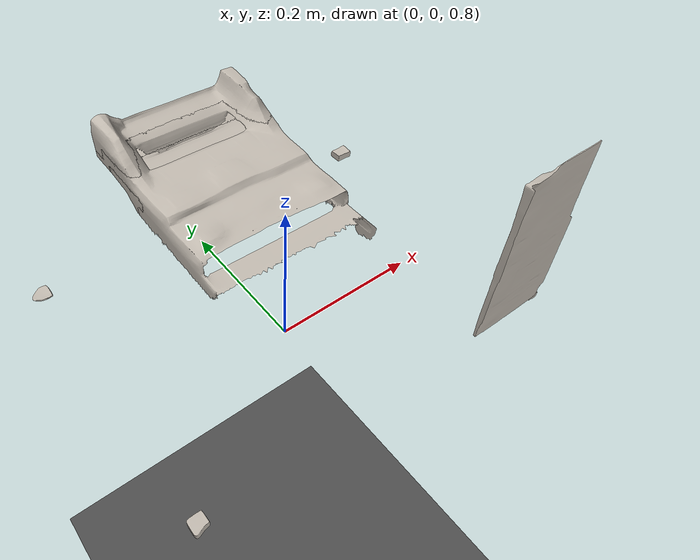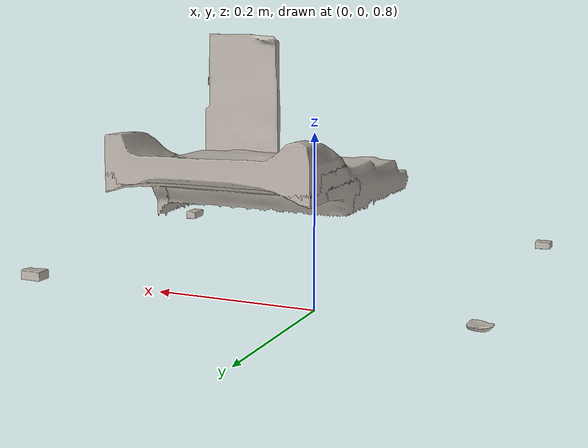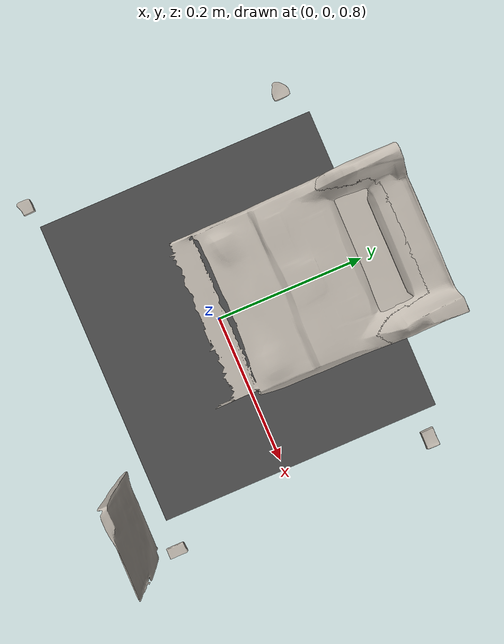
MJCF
<?xml version='1.0' encoding='utf-8'?>
<mujoco model="test">
    <compiler angle="radian" autolimits="true" />
    <option timestep="0.002" gravity="0 0 -9.81" wind="0 0 0" integrator="implicitfast" density="1.225" viscosity="1.8e-05" />
    <visual>
        <global realtime="1" />
        <quality shadowsize="16384" numslices="28" offsamples="4" />
        <headlight diffuse="2 2 2" specular="0.5 0.5 0.5" active="1" />
        <rgba fog="0 1 0 1" haze="1 0 0 1" />
    </visual>
    <asset>
        <mesh name="l_0_Frame" file="./objs/0/0.obj" scale="0.5 0.5 0.5" />
        <texture type="2d" name="l_0_Frame_tex" file="./objs/0/material_0.png" />
        <material name="l_0_Frame_img" texture="l_0_Frame_tex" />
        <mesh name="l_1_Door" file="./objs/1/1.obj" scale="0.5 0.5 0.5" />
        <texture type="2d" name="l_1_Door_tex" file="./objs/1/material_0.png" />
        <material name="l_1_Door_img" texture="l_1_Door_tex" />
        <mesh name="l_2_Side Controls" file="./objs/2/2.obj" scale="0.5 0.5 0.5" />
        <texture type="2d" name="l_2_Side Controls_tex" file="./objs/2/material_0.png" />
        <material name="l_2_Side Controls_img" texture="l_2_Side Controls_tex" />
        <mesh name="l_3_Foot" file="./objs/3/3.obj" scale="0.5 0.5 0.5" />
        <texture type="2d" name="l_3_Foot_tex" file="./objs/3/material_0.png" />
        <material name="l_3_Foot_img" texture="l_3_Foot_tex" />
        <mesh name="l_4_Foot" file="./objs/4/4.obj" scale="0.5 0.5 0.5" />
        <texture type="2d" name="l_4_Foot_tex" file="./objs/4/material_0.png" />
        <material name="l_4_Foot_img" texture="l_4_Foot_tex" />
        <mesh name="l_5_Foot" file="./objs/5/5.obj" scale="0.5 0.5 0.5" />
        <texture type="2d" name="l_5_Foot_tex" file="./objs/5/material_0.png" />
        <material name="l_5_Foot_img" texture="l_5_Foot_tex" />
        <mesh name="l_6_Foot" file="./objs/6/6.obj" scale="0.5 0.5 0.5" />
        <texture type="2d" name="l_6_Foot_tex" file="./objs/6/material_0.png" />
        <material name="l_6_Foot_img" texture="l_6_Foot_tex" />
        <texture type="skybox" file="./desert.png" gridsize="3 4" gridlayout=".U..LFRB.D.." />
        <texture name="plane" type="2d" builtin="checker" rgb1=".1 .1 .1" rgb2=".5 .5 .5" width="512" height="512" mark="cross" markrgb=".8 .8 .8" />
        <material name="plane" reflectance="0.3" texture="plane" texrepeat="1 1" texuniform="true" />
    </asset>
    <default>
        <geom solref=".5e-4" solimp="0.9 0.99 1e-4" fluidcoef="0.5 0.25 0.5 2.0 1.0" />
        <default class="l_0_Frame">
            <geom type="mesh" mesh="l_0_Frame" contype="1" conaffinity="1" density="7800.0" fluidshape="ellipsoid" />
        </default>
        <default class="l_1_Door">
            <geom type="mesh" mesh="l_1_Door" contype="1" conaffinity="1" density="1500.0" fluidshape="ellipsoid" />
        </default>
        <default class="l_2_Side Controls">
            <geom type="mesh" mesh="l_2_Side Controls" contype="1" conaffinity="1" density="1200.0" fluidshape="ellipsoid" />
        </default>
        <default class="l_3_Foot">
            <geom type="mesh" mesh="l_3_Foot" contype="1" conaffinity="1" density="1100.0" fluidshape="ellipsoid" />
        </default>
        <default class="l_4_Foot">
            <geom type="mesh" mesh="l_4_Foot" contype="1" conaffinity="1" density="1100.0" fluidshape="ellipsoid" />
        </default>
        <default class="l_5_Foot">
            <geom type="mesh" mesh="l_5_Foot" contype="1" conaffinity="1" density="1100.0" fluidshape="ellipsoid" />
        </default>
        <default class="l_6_Foot">
            <geom type="mesh" mesh="l_6_Foot" contype="1" conaffinity="1" density="1100.0" fluidshape="ellipsoid" />
        </default>
    </default>
    <worldbody>
        <geom name="floor" pos="0 0 0" size="0 0 .25" type="plane" material="plane" condim="6" />
        <light directional="true" ambient=".3 .3 .3" pos="30 30 30" dir="0 -2 -1" diffuse=".5 .5 .5" specular=".5 .5 .5" />
        <body name="base" pos="0 0 1" euler="0 0 0">
            <freejoint />
            <geom class="l_0_Frame" material="l_0_Frame_img" />
            <geom class="l_2_Side Controls" material="l_2_Side Controls_img" />
            <geom class="l_3_Foot" material="l_3_Foot_img" />
            <geom class="l_4_Foot" material="l_4_Foot_img" />
            <geom class="l_5_Foot" material="l_5_Foot_img" />
            <geom class="l_6_Foot" material="l_6_Foot_img" />
            <body name="grouppart_1" pos="0 0 0">
                <joint type="hinge" name="pivot_1" axis="0.0 0.0 1.0" pos="-0.242421875 -0.15796875 -0.25" range="-3.141592653589793 0.0" damping="0.001" frictionloss="0.0" stiffness="0" />
                <geom class="l_1_Door" material="l_1_Door_img" />
            </body>
        </body>
    </worldbody>
</mujoco>
